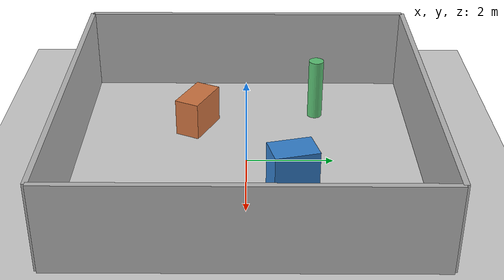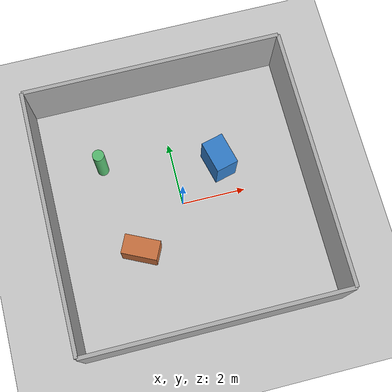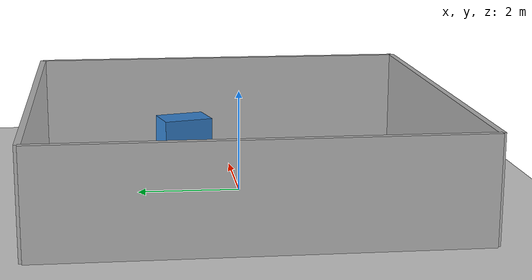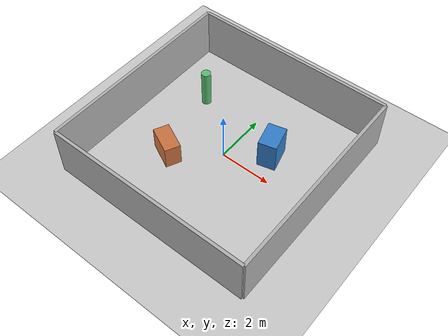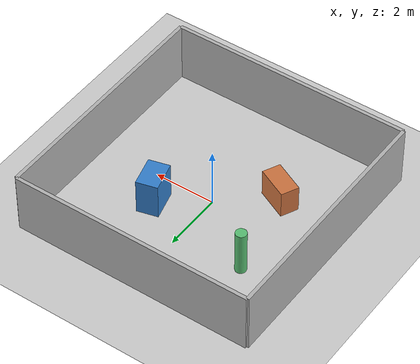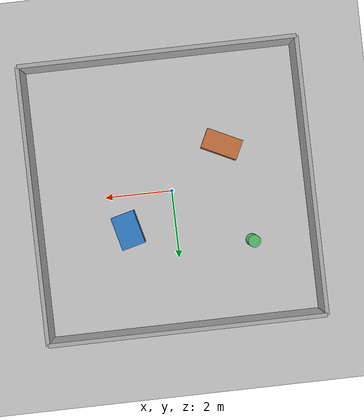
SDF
<?xml version="1.0" ?>
<sdf version="1.6">
  <world name="cartographer_test">
    <physics name="default_physics" default="0" type="ode">
      <max_step_size>0.001</max_step_size>
      <real_time_update_rate>1000</real_time_update_rate>
      <real_time_factor>1.0</real_time_factor>
    </physics>

    <include>
      <uri>model://sun</uri>
    </include>

    <include>
      <uri>model://ground_plane</uri>
    </include>

    <model name="north_wall">
      <static>true</static>
      <pose>0 4 1 0 0 0</pose>
      <link name="link">
        <collision name="collision">
          <geometry><box><size>8 0.12 2</size></box></geometry>
        </collision>
        <visual name="visual">
          <geometry><box><size>8 0.12 2</size></box></geometry>
          <material><ambient>0.7 0.7 0.7 1</ambient><diffuse>0.7 0.7 0.7 1</diffuse></material>
        </visual>
      </link>
    </model>

    <model name="south_wall">
      <static>true</static>
      <pose>0 -4 1 0 0 0</pose>
      <link name="link">
        <collision name="collision">
          <geometry><box><size>8 0.12 2</size></box></geometry>
        </collision>
        <visual name="visual">
          <geometry><box><size>8 0.12 2</size></box></geometry>
          <material><ambient>0.7 0.7 0.7 1</ambient><diffuse>0.7 0.7 0.7 1</diffuse></material>
        </visual>
      </link>
    </model>

    <model name="east_wall">
      <static>true</static>
      <pose>4 0 1 0 0 0</pose>
      <link name="link">
        <collision name="collision">
          <geometry><box><size>0.12 8 2</size></box></geometry>
        </collision>
        <visual name="visual">
          <geometry><box><size>0.12 8 2</size></box></geometry>
          <material><ambient>0.7 0.7 0.7 1</ambient><diffuse>0.7 0.7 0.7 1</diffuse></material>
        </visual>
      </link>
    </model>

    <model name="west_wall">
      <static>true</static>
      <pose>-4 0 1 0 0 0</pose>
      <link name="link">
        <collision name="collision">
          <geometry><box><size>0.12 8 2</size></box></geometry>
        </collision>
        <visual name="visual">
          <geometry><box><size>0.12 8 2</size></box></geometry>
          <material><ambient>0.7 0.7 0.7 1</ambient><diffuse>0.7 0.7 0.7 1</diffuse></material>
        </visual>
      </link>
    </model>

    <model name="box_a">
      <static>true</static>
      <pose>1.4 1.0 0.6 0 0 0.25</pose>
      <link name="link">
        <collision name="collision">
          <geometry><box><size>0.7 1.0 1.2</size></box></geometry>
        </collision>
        <visual name="visual">
          <geometry><box><size>0.7 1.0 1.2</size></box></geometry>
          <material><ambient>0.2 0.5 0.8 1</ambient><diffuse>0.2 0.5 0.8 1</diffuse></material>
        </visual>
      </link>
    </model>

    <model name="box_b">
      <static>true</static>
      <pose>-1.6 -1.2 0.45 0 0 -0.45</pose>
      <link name="link">
        <collision name="collision">
          <geometry><box><size>1.1 0.6 0.9</size></box></geometry>
        </collision>
        <visual name="visual">
          <geometry><box><size>1.1 0.6 0.9</size></box></geometry>
          <material><ambient>0.8 0.45 0.25 1</ambient><diffuse>0.8 0.45 0.25 1</diffuse></material>
        </visual>
      </link>
    </model>

    <model name="post_a">
      <static>true</static>
      <pose>-2.2 1.7 0.75 0 0 0</pose>
      <link name="link">
        <collision name="collision">
          <geometry><cylinder><radius>0.18</radius><length>1.5</length></cylinder></geometry>
        </collision>
        <visual name="visual">
          <geometry><cylinder><radius>0.18</radius><length>1.5</length></cylinder></geometry>
          <material><ambient>0.35 0.75 0.45 1</ambient><diffuse>0.35 0.75 0.45 1</diffuse></material>
        </visual>
      </link>
    </model>
  </world>
</sdf>
